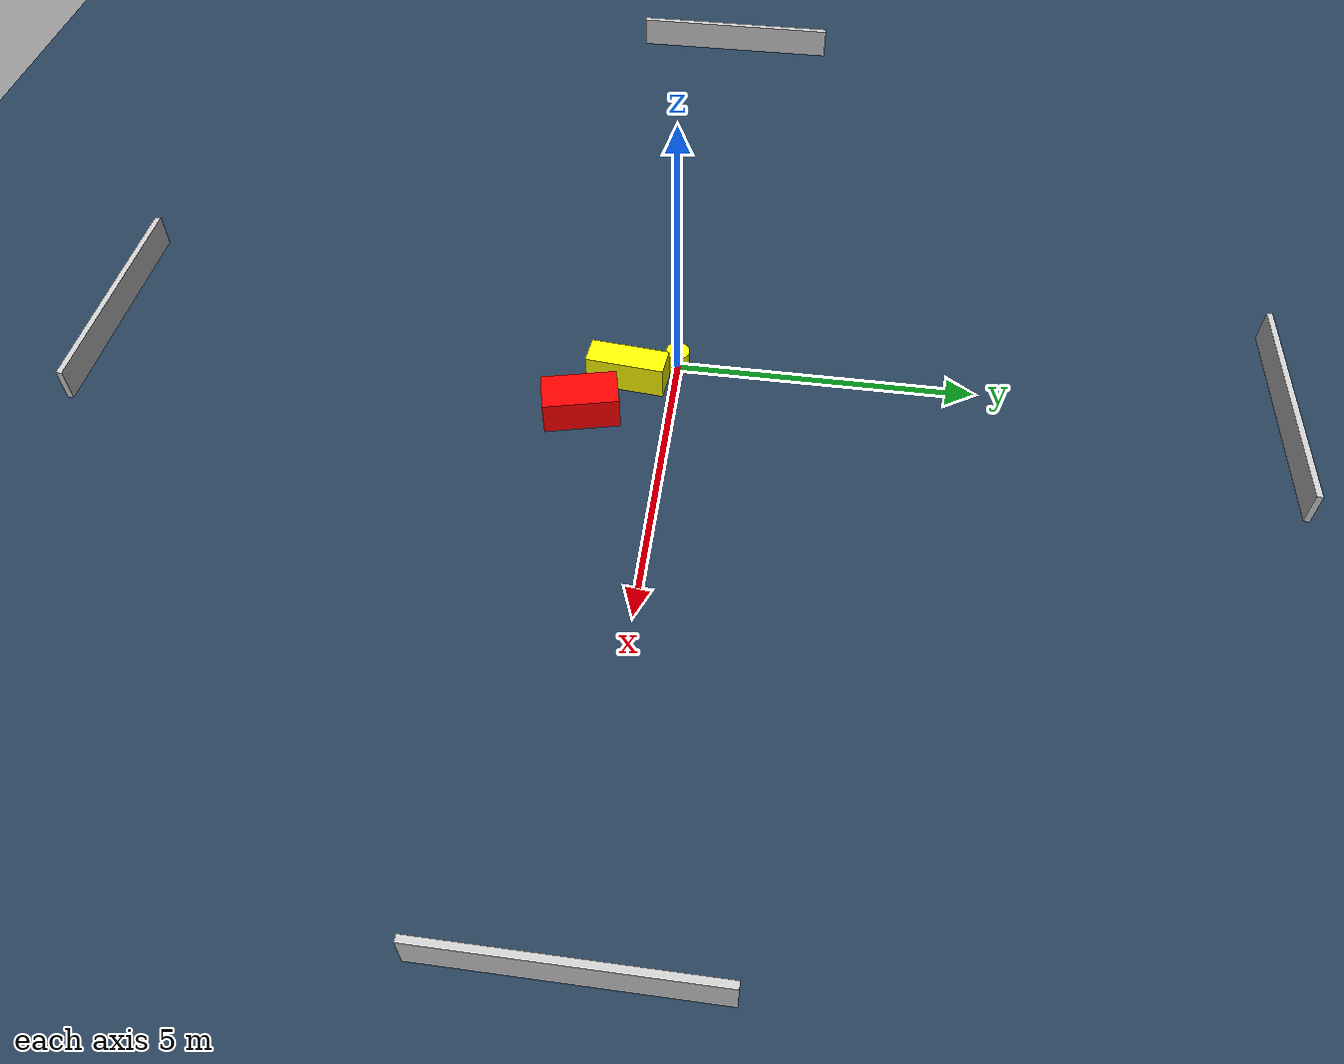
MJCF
<?xml version="1.0" ?>
<mujoco model="generated_environment">
  <option timestep="0.01" integrator="RK4" cone="elliptic"/>
  <default>
    <geom density="1"/>
  </default>
  <asset>
    <texture builtin="gradient" height="3072" name="skybox" rgb1="0.3 0.5 0.7" rgb2="0 0 0" type="skybox" width="512"/>
    <texture builtin="checker" height="300" name="groundplane" rgb1="0.2 0.3 0.4" rgb2="0.1 0.2 0.3" type="2d" width="300"/>
    <material name="groundplane" reflectance="0.2" texrepeat="5 5" texture="groundplane"/>
  </asset>
  <worldbody>
    <light dir="0 0 -1" directional="true" pos="0 0 1.5"/>
    <geom condim="3" friction="0.5 0.005 0.001" material="groundplane" name="floor" pos="0 0 0" size="0 0 0.05" type="plane"/>
    <body name="walls">
      <geom name="wall_1" condim="4" pos="-10.0 0.0 0.3" rgba="0.800000011920929 0.800000011920929 0.800000011920929 1.0" size="0.05 2.0 0.3" type="box"/>
      <geom name="wall_2" condim="4" pos="10.0 0.0 0.3" rgba="0.800000011920929 0.800000011920929 0.800000011920929 1.0" size="0.05 2.0 0.3" type="box"/>
      <geom name="wall_3" condim="4" pos="0.0 -10.0 0.3" rgba="0.800000011920929 0.800000011920929 0.800000011920929 1.0" size="2.0 0.05 0.3" type="box"/>
      <geom name="wall_4" condim="4" pos="0.0 10.0 0.3" rgba="0.800000011920929 0.800000011920929 0.800000011920929 1.0" size="2.0 0.05 0.3" type="box"/>
    </body>
    <body name="robot">
      <joint name="joint_x" type="slide" pos="0 0 0" axis="1 0 0"/>
      <joint name="joint_y" type="slide" pos="0 0 0" axis="0 1 0"/>
      <geom name="robot" type="cylinder" pos="0.0 0.0 0.2" size="0.2 0.2 0.0" mass="5.0" friction="1.0 0.005 0.0001" condim="4" rgba="1.0 1.0 0.0 1.0"/>
    </body>
    <body name="obstacle_1_movable">
      <geom name="obstacle_1_movable" condim="4" pos="0.4092843024717847 -0.7966162926217308 0.3" euler="0 0 84.45662079984055" friction="0.0 0.005 0.001" rgba="1.0 1.0 0.0 1.0" size="0.6612552575270445 0.23399636123377232 0.3" type="box" mass="0.1"/>
      <joint type="free"/>
    </body>
    <body name="obstacle_2_static">
      <geom name="obstacle_2_static" condim="4" pos="1.2540766207388052 -1.4471504744246435 0.3" euler="0 0 13.310368537348625" friction="0.0 0.005 0.001" rgba="1.0 0.0 0.0 1.0" size="0.3347723668522403 0.622938949601404 0.3" type="box"/>
    </body>
  </worldbody>
  <actuator>
    <motor name="actuator_x" joint="joint_x" gear="1" ctrlrange="-1 1"/>
    <motor name="actuator_y" joint="joint_y" gear="1" ctrlrange="-1 1"/>
  </actuator>
</mujoco>
